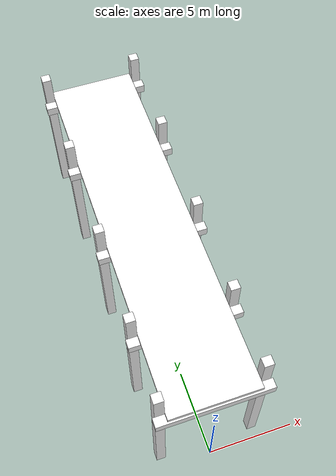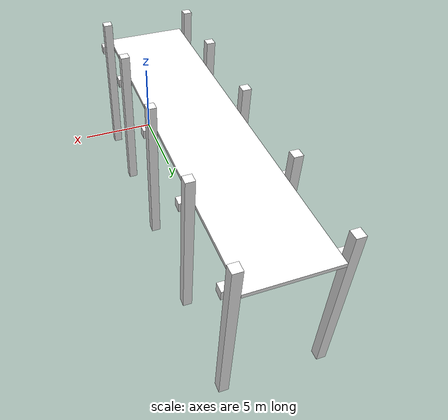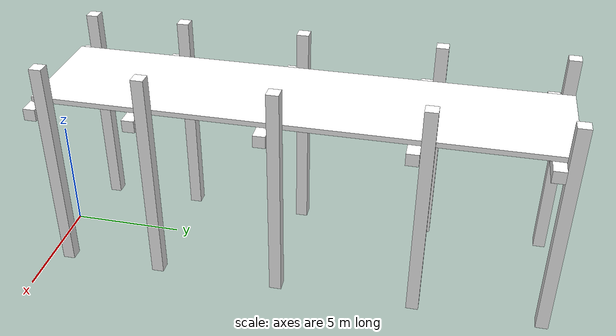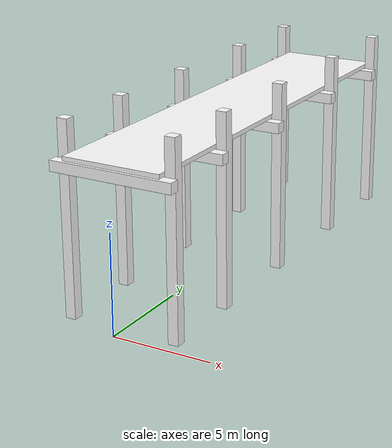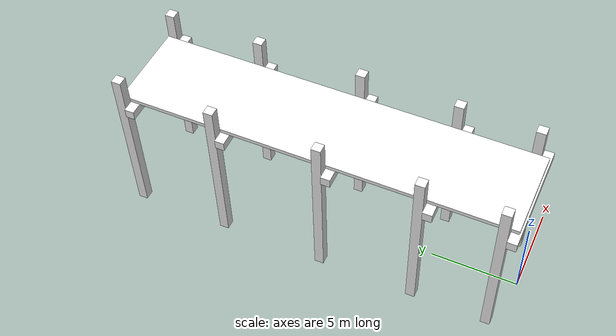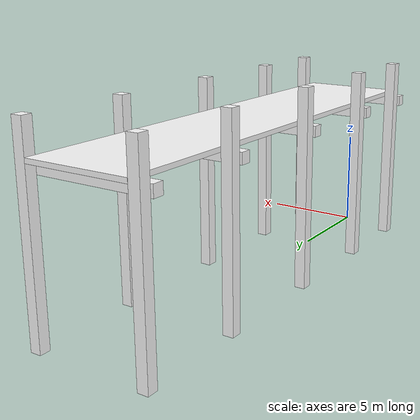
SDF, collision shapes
<?xml version="1.0" ?>
<sdf version="1.6">
  <model name="pier">
    <static>true</static>
    <link name="link">
      <pose>0 0 7.457472766 0 0 0</pose>
      <collision name="collision_platform">
        <pose>0 11.191539466 0.479153728 0 0 0</pose>
        <geometry>
          <box>
            <size>4.998414184 22.105855458 0.223136714</size>
          </box>
        </geometry>
      </collision>
      <collision name="collision_pillar1">
        <pose>2.765798126 0.839949044 -2.649199172 0 0 0</pose>
        <geometry>
          <box>
            <size>0.526207228 0.526207228 9.616546934</size>
          </box>
        </geometry>
      </collision>
      <collision name="collision_pillar2">
        <pose>2.765798126 5.15329932 -2.649199172 0 0 0</pose>
        <geometry>
          <box>
            <size>0.526207228 0.526207228 9.616546934</size>
          </box>
        </geometry>
      </collision>
      <collision name="collision_pillar3">
        <pose>2.765798126 10.602651388 -2.649199172 0 0 0</pose>
        <geometry>
          <box>
            <size>0.526207228 0.526207228 9.616546934</size>
          </box>
        </geometry>
      </collision>
      <collision name="collision_pillar4">
        <pose>2.765798126 16.597281512 -2.649199172 0 0 0</pose>
        <geometry>
          <box>
            <size>0.526207228 0.526207228 9.616546934</size>
          </box>
        </geometry>
      </collision>
      <collision name="collision_pillar5">
        <pose>2.765798126 21.976791962 -2.649199172 0 0 0</pose>
        <geometry>
          <box>
            <size>0.526207228 0.526207228 9.616546934</size>
          </box>
        </geometry>
      </collision>

      <collision name="collision_pillar6">
        <pose>-2.765798126 0.839949044 -2.649199172 0 0 0</pose>
        <geometry>
          <box>
            <size>0.526207228 0.526207228 9.616546934</size>
          </box>
        </geometry>
      </collision>
      <collision name="collision_pillar7">
        <pose>-2.765798126 5.15329932 -2.649199172 0 0 0</pose>
        <geometry>
          <box>
            <size>0.526207228 0.526207228 9.616546934</size>
          </box>
        </geometry>
      </collision>
      <collision name="collision_pillar8">
        <pose>-2.765798126 10.602651388 -2.649199172 0 0 0</pose>
        <geometry>
          <box>
            <size>0.526207228 0.526207228 9.616546934</size>
          </box>
        </geometry>
      </collision>
      <collision name="collision_pillar9">
        <pose>-2.765798126 16.597281512 -2.649199172 0 0 0</pose>
        <geometry>
          <box>
            <size>0.526207228 0.526207228 9.616546934</size>
          </box>
        </geometry>
      </collision>
      <collision name="collision_pillar10">
        <pose>-2.765798126 21.976791962 -2.649199172 0 0 0</pose>
        <geometry>
          <box>
            <size>0.526207228 0.526207228 9.616546934</size>
          </box>
        </geometry>
      </collision>

      <collision name="collision_beam1">
        <pose>0 0.303861978 0.079695294 0 0 0</pose>
        <geometry>
          <box>
            <size>6.28904 0.526207228 0.526207228</size>
          </box>
        </geometry>
      </collision>
      <collision name="collision_beam2">
        <pose>0 4.617212 0.079695294 0 0 0</pose>
        <geometry>
          <box>
            <size>6.28904 0.526207228 0.526207228</size>
          </box>
        </geometry>
      </collision>
      <collision name="collision_beam3">
        <pose>0 10.066563814 0.079695294 0 0 0</pose>
        <geometry>
          <box>
            <size>6.28904 0.526207228 0.526207228</size>
          </box>
        </geometry>
      </collision>
      <collision name="collision_beam4">
        <pose>0 16.061198002 0.079695294 0 0 0</pose>
        <geometry>
          <box>
            <size>6.28904 0.526207228 0.526207228</size>
          </box>
        </geometry>
      </collision>
      <collision name="collision_beam5">
        <pose>0 21.440703626 0.079695294 0 0 0</pose>
        <geometry>
          <box>
            <size>6.28904 0.526207228 0.526207228</size>
          </box>
        </geometry>
      </collision>

      <visual name="visual">
        <geometry>
          <mesh>
            <uri>model://pier/meshes/pier.dae</uri>
          </mesh>
        </geometry>
        <material>
          <ambient>1 1 1 1</ambient>
          <diffuse>1 1 1 1</diffuse>
          <pbr>
            <metal>
              <albedo_map>model://pier/materials/textures/pier_diffuse.jpg</albedo_map>
            </metal>
          </pbr>
        </material>
      </visual>
    </link>
  </model>
</sdf>
